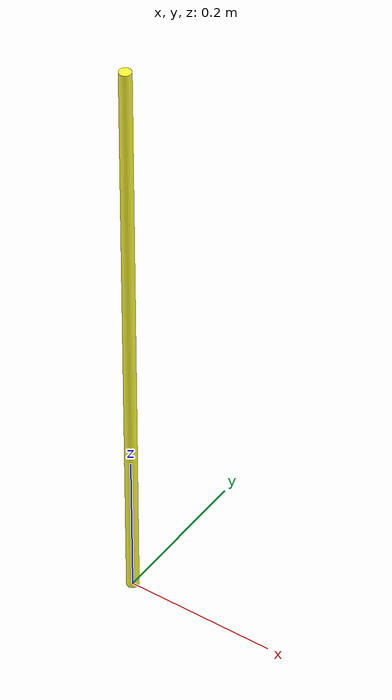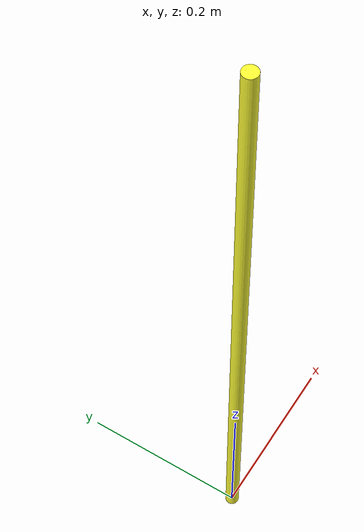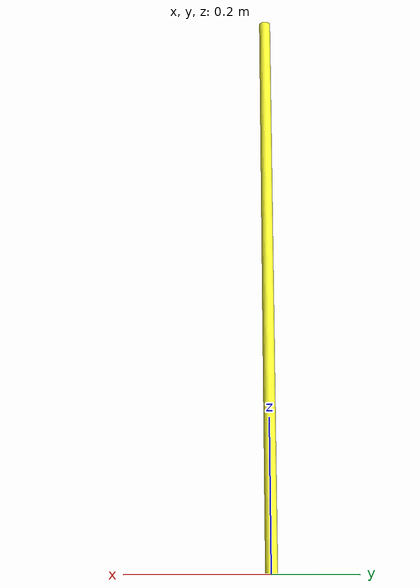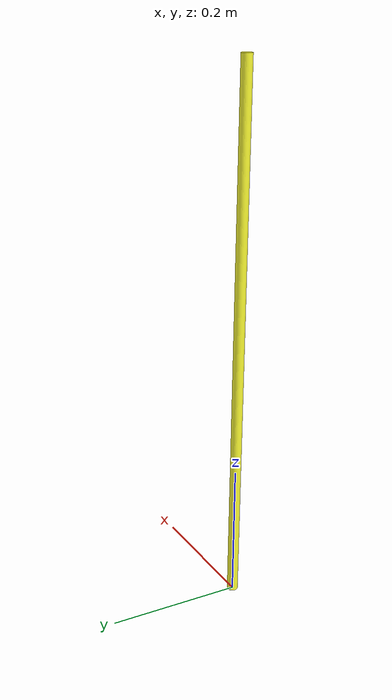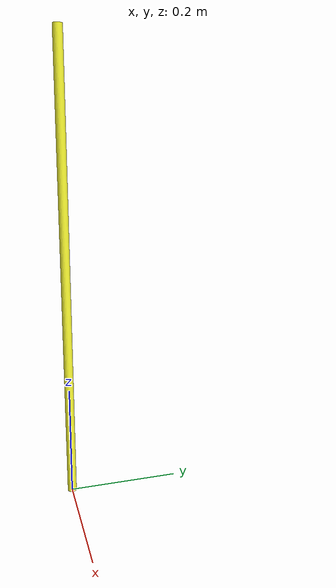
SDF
<?xml version="1.0"?>
<sdf version="1.8">
  <!-- SAUVC 2026 Yellow Flare
       Diameter: ~1.6cm, Height: 80cm
       Color: Yellow
  -->
  <model name="yellow_flare">
    <static>true</static>

    <link name="flare">
      <pose>0 0 0.4 0 0 0</pose>
      <inertial>
        <mass>0.1</mass>
        <inertia>
          <ixx>0.005</ixx><ixy>0</ixy><ixz>0</ixz>
          <iyy>0.005</iyy><iyz>0</iyz><izz>0.0001</izz>
        </inertia>
      </inertial>

      <visual name="flare_visual">
        <geometry>
          <cylinder>
            <radius>0.008</radius>
            <length>0.8</length>
          </cylinder>
        </geometry>
        <material>
          <ambient>1 0.9 0.1 1</ambient>
          <diffuse>1 1 0.2 1</diffuse>
          <specular>0.3 0.3 0.3 1</specular>
        </material>
      </visual>

      <collision name="flare_collision">
        <geometry>
          <cylinder>
            <radius>0.008</radius>
            <length>0.8</length>
          </cylinder>
        </geometry>
      </collision>
    </link>

  </model>
</sdf>
